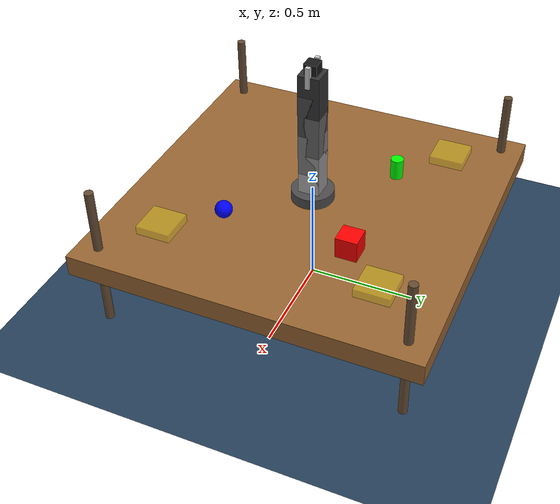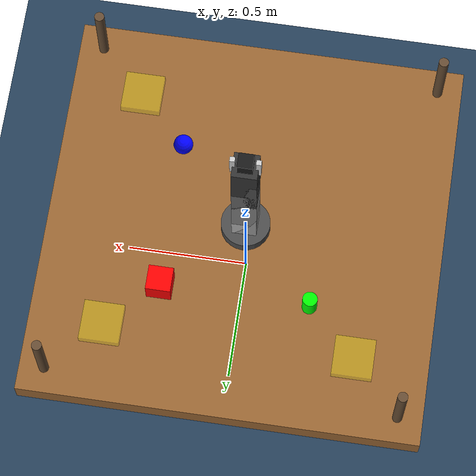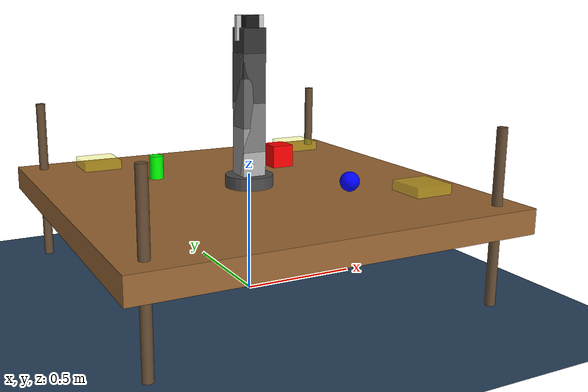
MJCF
<?xml version="1.0" ?>
<mujoco model="manipulation_scene">
  <compiler angle="radian" coordinate="local" inertiafromgeom="true"/>
  <option timestep="0.002" gravity="0 0 -9.81" solver="Newton" iterations="50" tolerance="1e-10"/>

  <default>
    <joint armature="0.1" damping="0.1" limited="true"/>
    <geom conaffinity="0" condim="3" density="5.0" friction="1 0.5 0.001" rgba="0.8 0.6 0.4 1"/>
    <motor ctrllimited="true" ctrlrange="-1 1"/>
  </default>

  <asset>
    <texture name="grid" type="2d" builtin="checker" rgb1="0.1 0.2 0.3" rgb2="0.2 0.3 0.4" width="300" height="300"/>
    <material name="grid" texture="grid" texrepeat="8 8" reflectance="0.2"/>
    <texture name="skybox" type="skybox" builtin="gradient" rgb1="0.3 0.5 0.7" rgb2="0 0 0" width="512" height="512"/>
    <material name="skybox" texture="skybox"/>
  </asset>

  <worldbody>
    <!-- Lighting -->
    <light name="light" pos="0 0 4" dir="0 0 -1" diffuse="0.5 0.5 0.5" specular="0.1 0.1 0.1"/>
    <light name="light2" pos="2 2 4" dir="-1 -1 -1" diffuse="0.3 0.3 0.3" specular="0.1 0.1 0.1"/>

    <!-- Ground -->
    <geom name="ground" type="plane" size="2 2 0.1" rgba="0.5 0.5 0.5 1" material="grid"/>

    <!-- Table -->
    <body name="table" pos="0 0 0.4">
      <geom name="table_surface" type="box" size="0.8 0.8 0.05" rgba="0.6 0.4 0.2 1"/>
      <geom name="table_leg1" type="cylinder" size="0.02 0.35" pos="-0.7 -0.7 0" rgba="0.4 0.3 0.2 1"/>
      <geom name="table_leg2" type="cylinder" size="0.02 0.35" pos="0.7 -0.7 0" rgba="0.4 0.3 0.2 1"/>
      <geom name="table_leg3" type="cylinder" size="0.02 0.35" pos="-0.7 0.7 0" rgba="0.4 0.3 0.2 1"/>
      <geom name="table_leg4" type="cylinder" size="0.02 0.35" pos="0.7 0.7 0" rgba="0.4 0.3 0.2 1"/>
    </body>

    <!-- Robot Arm -->
    <body name="robot_base" pos="0 0 0.4">
      <geom name="base" type="cylinder" size="0.1 0.1" rgba="0.3 0.3 0.3 1"/>

      <!-- Joint 1: Base rotation -->
      <joint name="joint1" type="hinge" axis="0 0 1" pos="0 0 0" range="-3.14 3.14"/>
      <body name="link1" pos="0 0 0.1">
        <geom name="link1_geom" type="box" size="0.05 0.05 0.1" rgba="0.7 0.7 0.7 1"/>

        <!-- Joint 2: Shoulder -->
        <joint name="joint2" type="hinge" axis="0 1 0" pos="0 0 0.1" range="-1.57 1.57"/>
        <body name="link2" pos="0 0 0.1">
          <geom name="link2_geom" type="box" size="0.05 0.05 0.1" rgba="0.6 0.6 0.6 1"/>

          <!-- Joint 3: Elbow -->
          <joint name="joint3" type="hinge" axis="0 1 0" pos="0 0 0.1" range="-1.57 1.57"/>
          <body name="link3" pos="0 0 0.1">
            <geom name="link3_geom" type="box" size="0.05 0.05 0.1" rgba="0.5 0.5 0.5 1"/>

            <!-- Joint 4: Wrist 1 -->
            <joint name="joint4" type="hinge" axis="0 1 0" pos="0 0 0.1" range="-1.57 1.57"/>
            <body name="link4" pos="0 0 0.1">
              <geom name="link4_geom" type="box" size="0.05 0.05 0.1" rgba="0.4 0.4 0.4 1"/>

              <!-- Joint 5: Wrist 2 -->
              <joint name="joint5" type="hinge" axis="0 0 1" pos="0 0 0.1" range="-1.57 1.57"/>
              <body name="link5" pos="0 0 0.1">
                <geom name="link5_geom" type="box" size="0.05 0.05 0.1" rgba="0.3 0.3 0.3 1"/>

                <!-- Joint 6: Wrist 3 -->
                <joint name="joint6" type="hinge" axis="0 1 0" pos="0 0 0.1" range="-1.57 1.57"/>
                <body name="link6" pos="0 0 0.1">
                  <geom name="link6_geom" type="box" size="0.05 0.05 0.1" rgba="0.2 0.2 0.2 1"/>

                  <!-- Gripper -->
                  <body name="gripper_base" pos="0 0 0.1">
                    <geom name="gripper_base_geom" type="box" size="0.03 0.03 0.05" rgba="0.1 0.1 0.1 1"/>

                    <!-- Left gripper finger -->
                    <joint name="gripper_left" type="slide" axis="1 0 0" pos="0 0 0" range="0 0.05"/>
                    <body name="gripper_left_finger" pos="0 0 0">
                      <geom name="gripper_left_geom" type="box" size="0.01 0.01 0.05" pos="0.05 0 0" rgba="0.8 0.8 0.8 1"/>
                    </body>

                    <!-- Right gripper finger -->
                    <joint name="gripper_right" type="slide" axis="-1 0 0" pos="0 0 0" range="0 0.05"/>
                    <body name="gripper_right_finger" pos="0 0 0">
                      <geom name="gripper_right_geom" type="box" size="0.01 0.01 0.05" pos="-0.05 0 0" rgba="0.8 0.8 0.8 1"/>
                    </body>
                  </body>
                </body>
              </body>
            </body>
          </body>
        </body>
      </body>
    </body>

    <!-- Objects to manipulate -->
    <body name="object1" pos="0.3 0.3 0.5">
      <joint name="object1_joint" type="free"/>
      <geom name="object1_geom" type="box" size="0.05 0.05 0.05" rgba="1 0 0 1" mass="0.1"/>
    </body>

    <body name="object2" pos="-0.3 0.3 0.5">
      <joint name="object2_joint" type="free"/>
      <geom name="object2_geom" type="cylinder" size="0.03 0.05" rgba="0 1 0 1" mass="0.1"/>
    </body>

    <body name="object3" pos="0.3 -0.3 0.5">
      <joint name="object3_joint" type="free"/>
      <geom name="object3_geom" type="sphere" size="0.04" rgba="0 0 1 1" mass="0.1"/>
    </body>

    <!-- Target locations -->
    <body name="target1" pos="0.5 0.5 0.5">
      <geom name="target1_geom" type="box" size="0.08 0.08 0.02" rgba="1 1 0 0.3" contype="0" conaffinity="0"/>
    </body>

    <body name="target2" pos="-0.5 0.5 0.5">
      <geom name="target2_geom" type="box" size="0.08 0.08 0.02" rgba="1 1 0 0.3" contype="0" conaffinity="0"/>
    </body>

    <body name="target3" pos="0.5 -0.5 0.5">
      <geom name="target3_geom" type="box" size="0.08 0.08 0.02" rgba="1 1 0 0.3" contype="0" conaffinity="0"/>
    </body>
  </worldbody>

  <actuator>
    <motor name="motor1" joint="joint1" gear="100"/>
    <motor name="motor2" joint="joint2" gear="100"/>
    <motor name="motor3" joint="joint3" gear="100"/>
    <motor name="motor4" joint="joint4" gear="100"/>
    <motor name="motor5" joint="joint5" gear="100"/>
    <motor name="motor6" joint="joint6" gear="100"/>
    <motor name="gripper_motor" joint="gripper_left" gear="50"/>
  </actuator>

  <sensor>
    <!-- Joint position sensors -->
    <jointpos name="joint1_pos" joint="joint1"/>
    <jointpos name="joint2_pos" joint="joint2"/>
    <jointpos name="joint3_pos" joint="joint3"/>
    <jointpos name="joint4_pos" joint="joint4"/>
    <jointpos name="joint5_pos" joint="joint5"/>
    <jointpos name="joint6_pos" joint="joint6"/>
    <jointpos name="gripper_pos" joint="gripper_left"/>

    <!-- Joint velocity sensors -->
    <jointvel name="joint1_vel" joint="joint1"/>
    <jointvel name="joint2_vel" joint="joint2"/>
    <jointvel name="joint3_vel" joint="joint3"/>
    <jointvel name="joint4_vel" joint="joint4"/>
    <jointvel name="joint5_vel" joint="joint5"/>
    <jointvel name="joint6_vel" joint="joint6"/>
    <jointvel name="gripper_vel" joint="gripper_left"/>

    <!-- Body position sensors -->
    <framepos name="gripper_pos" objtype="body" objname="gripper_base"/>
    <framepos name="object1_pos" objtype="body" objname="object1"/>
    <framepos name="object2_pos" objtype="body" objname="object2"/>
    <framepos name="object3_pos" objtype="body" objname="object3"/>

    <!-- Contact sensors -->
    <touch name="gripper_left_touch" geom="gripper_left_geom"/>
    <touch name="gripper_right_touch" geom="gripper_right_geom"/>
  </sensor>
</mujoco>
